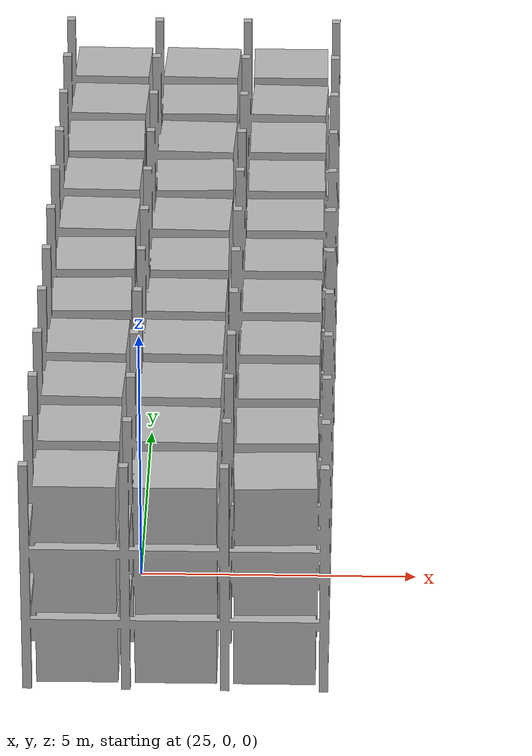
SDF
<?xml version="1.0"?>
<sdf version="1.7">
  <model name="bale_storage">
    <static>true</static>
    <link name="link">
      <visual name="visual">
        <geometry>
          <mesh><uri>model://bale_storage/meshes/bale_storage.obj</uri><scale>1 1 1</scale></mesh>
        </geometry>
      </visual>
      <collision name="collision">
        <geometry>
          <mesh><uri>model://bale_storage/meshes/bale_storage.obj</uri><scale>1 1 1</scale></mesh>
        </geometry>
      </collision>
    </link>
  </model>
</sdf>
